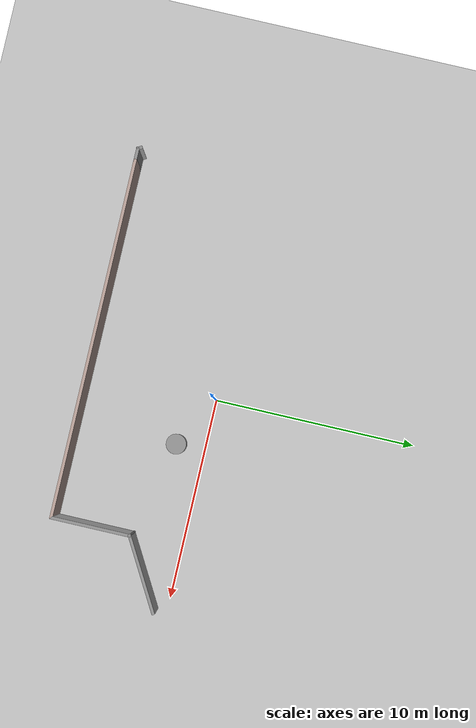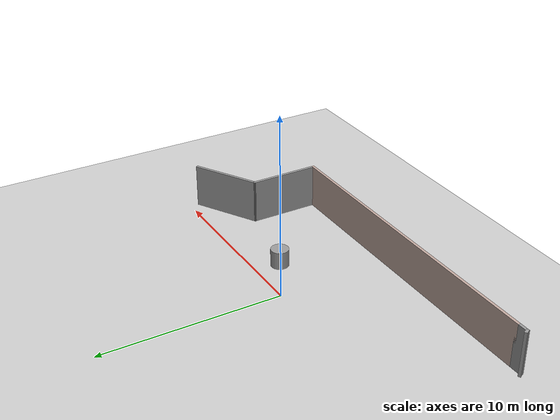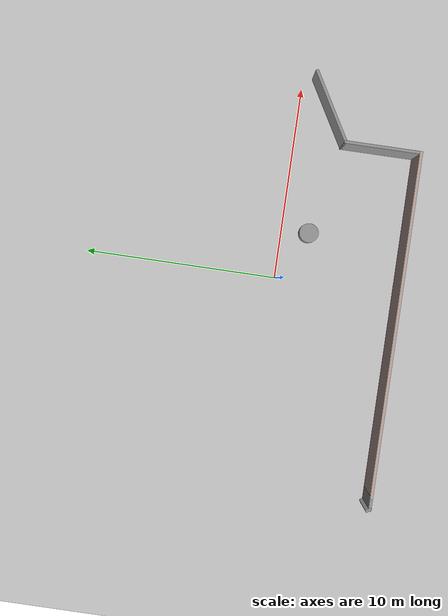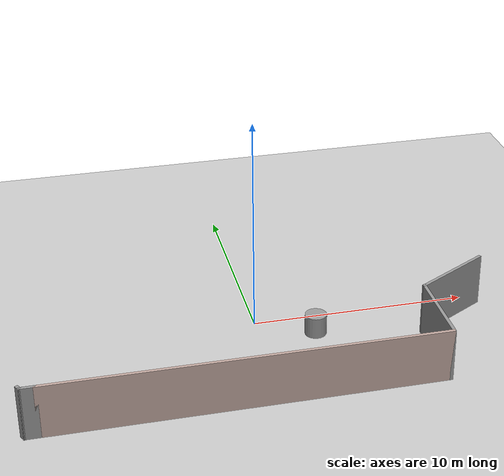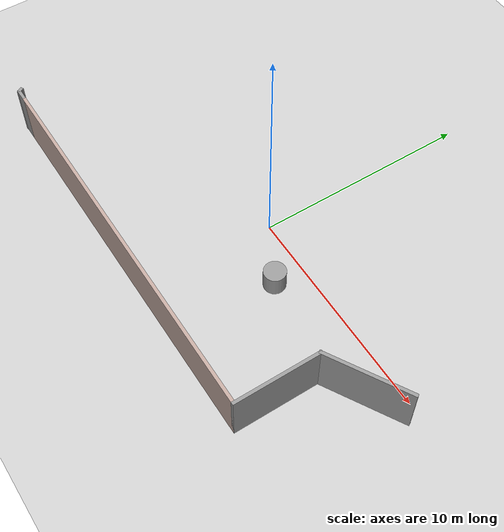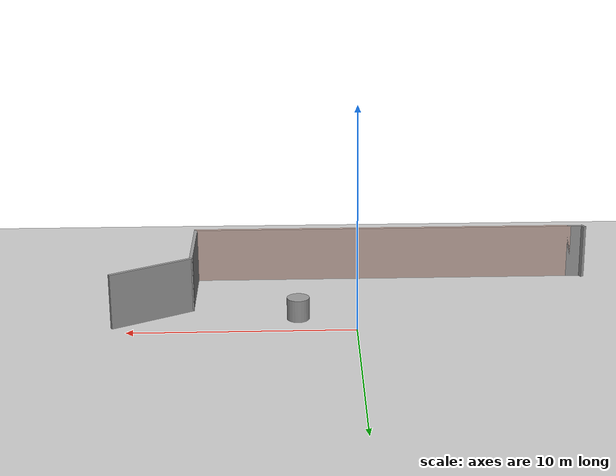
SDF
<sdf version="1.6">
 <world name="default">
  <light name="sun" type="directional">
   <pose>0 0 10 0 -0 0</pose>
   <diffuse>0.8 0.8 0.8 1</diffuse>
   <specular>0.2 0.2 0.2 1</specular>
   <attenuation>
    <range>1000</range>
    <constant>0.9</constant>
    <linear>0.01</linear>
    <quadratic>0.001</quadratic>
   </attenuation>
   <direction>-0.5 0.1 -0.9</direction>
  </light>
  <model name="ground_plane">
   <static>1</static>
   <link name="link">
    <collision name="collision">
     <geometry><plane><normal>0 0 1</normal><size>100 100</size></plane></geometry>
     <surface>
      <contact><collide_bitmask>65535</collide_bitmask></contact>
      <friction><ode><mu>100</mu><mu2>50</mu2></ode></friction>
     </surface>
    </collision>
    <visual name="visual">
     <cast_shadows>0</cast_shadows>
     <geometry><plane><normal>0 0 1</normal><size>100 100</size></plane></geometry>
     <material>
      <script><uri>file://media/materials/scripts/gazebo.material</uri><name>Gazebo/Grey</name></script>
     </material>
    </visual>
   </link>
  </model>
  <gravity>0 0 -9.8</gravity>
  <magnetic_field>6e-06 2.3e-05 -4.2e-05</magnetic_field>
  <atmosphere type="adiabatic"/>
  <physics name="default_physics" default="0" type="ode">
   <max_step_size>0.001</max_step_size>
   <real_time_factor>1</real_time_factor>
   <real_time_update_rate>1000</real_time_update_rate>
  </physics>
  <scene><ambient>0.4 0.4 0.4 1</ambient><background>0.7 0.7 0.7 1</background><shadows>1</shadows></scene>
  <audio><device>default</device></audio>
  <spherical_coordinates>
   <surface_model>EARTH_WGS84</surface_model>
   <latitude_deg>0</latitude_deg>
   <longitude_deg>0</longitude_deg>
   <elevation>0</elevation>
   <heading_deg>0</heading_deg>
  </spherical_coordinates>
  <model name="unit_cylinder">
   <pose>2.54742 -1.39979 0.499994 -4e-06 -3e-06 -0</pose>
   <link name="link">
    <inertial>
     <mass>1</mass>
     <inertia><ixx>0.145833</ixx><ixy>0</ixy><ixz>0</ixz><iyy>0.145833</iyy><iyz>0</iyz><izz>0.125</izz></inertia>
    </inertial>
    <collision name="collision">
     <geometry><cylinder><radius>0.5</radius><length>1</length></cylinder></geometry>
    </collision>
    <visual name="visual">
     <geometry><cylinder><radius>0.5</radius><length>1</length></cylinder></geometry>
     <material>
      <script><name>Gazebo/Grey</name><uri>file://media/materials/scripts/gazebo.material</uri></script>
     </material>
    </visual>
   </link>
  </model>
  <model name="userdefine">
   <pose>-0.185401 -3.4524 0 0 -0 0</pose>
   <link name="Wall_0">
    <collision name="Wall_0_Collision">
     <geometry><box><size>0.3 0.15 2.5</size></box></geometry>
     <pose>0 0 1.25 0 -0 0</pose>
    </collision>
    <visual name="Wall_0_Visual">
     <pose>0 0 1.25 0 -0 0</pose>
     <geometry><box><size>0.3 0.15 2.5</size></box></geometry>
     <material>
      <script><uri>file://media/materials/scripts/gazebo.material</uri><name>Gazebo/Grey</name></script>
      <ambient>1 1 1 1</ambient>
     </material>
     <meta><layer>0</layer></meta>
    </visual>
    <pose>-10.7671 -2.82255 0 0 -0 -1.0472</pose>
   </link>
   <link name="Wall_1">
    <collision name="Wall_1_Collision">
     <geometry><box><size>0.75 0.15 2.5</size></box></geometry>
     <pose>0 0 1.25 0 -0 0</pose>
    </collision>
    <visual name="Wall_1_Visual">
     <pose>0 0 1.25 0 -0 0</pose>
     <geometry><box><size>0.75 0.15 2.5</size></box></geometry>
     <material>
      <script><uri>file://media/materials/scripts/gazebo.material</uri><name>Gazebo/Grey</name></script>
      <ambient>1 1 1 1</ambient>
     </material>
     <meta><layer>0</layer></meta>
    </visual>
    <pose>-10.4296 -2.8875 0 0 -0 0</pose>
   </link>
   <link name="Wall_2">
    <collision name="Wall_2_Collision">
     <geometry><box><size>17.75 0.15 2.5</size></box></geometry>
     <pose>0 0 1.25 0 -0 0</pose>
    </collision>
    <visual name="Wall_2_Visual">
     <pose>0 0 1.25 0 -0 0</pose>
     <geometry><box><size>17.75 0.15 2.5</size></box></geometry>
     <material>
      <script><uri>file://media/materials/scripts/gazebo.material</uri><name>Gazebo/Grey</name></script>
      <ambient>0.760784 0.662745 0.627451 1</ambient>
     </material>
     <meta><layer>0</layer></meta>
    </visual>
    <pose>-1.3296 -2.8875 0 0 -0 0</pose>
   </link>
   <link name="Wall_3">
    <collision name="Wall_3_Collision">
     <geometry><box><size>4 0.15 2.5</size></box></geometry>
     <pose>0 0 1.25 0 -0 0</pose>
    </collision>
    <visual name="Wall_3_Visual">
     <pose>0 0 1.25 0 -0 0</pose>
     <geometry><box><size>4 0.15 2.5</size></box></geometry>
     <material>
      <script><uri>file://media/materials/scripts/gazebo.material</uri><name>Gazebo/Grey</name></script>
      <ambient>1 1 1 1</ambient>
     </material>
     <meta><layer>0</layer></meta>
    </visual>
    <pose>7.4704 -0.9625 0 0 -0 1.5708</pose>
   </link>
   <link name="Wall_4">
    <collision name="Wall_4_Collision">
     <geometry><box><size>4 0.15 2.5</size></box></geometry>
     <pose>0 0 1.25 0 -0 0</pose>
    </collision>
    <visual name="Wall_4_Visual">
     <pose>0 0 1.25 0 -0 0</pose>
     <geometry><box><size>4 0.15 2.5</size></box></geometry>
     <material>
      <script><uri>file://media/materials/scripts/gazebo.material</uri><name>Gazebo/Grey</name></script>
      <ambient>1 1 1 1</ambient>
     </material>
     <meta><layer>0</layer></meta>
    </visual>
    <pose>9.1375 1.925 0 0 -0 0.523599</pose>
   </link>
   <static>1</static>
  </model>
 </world>
</sdf>
